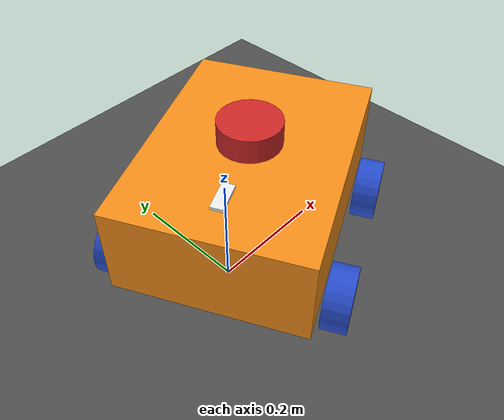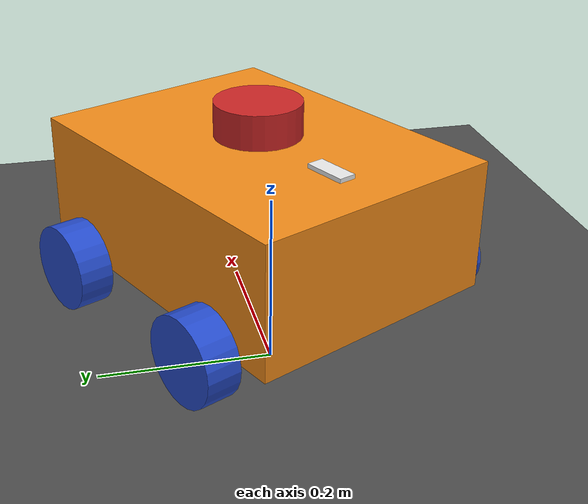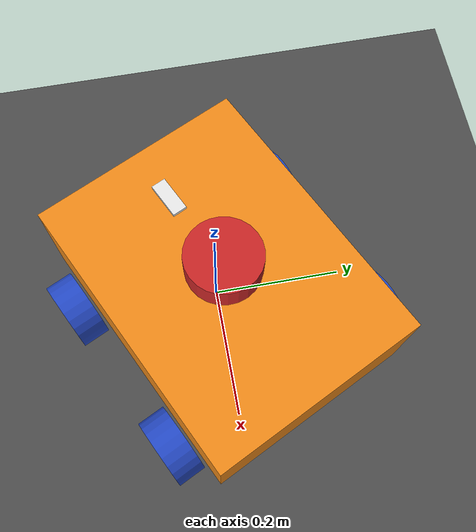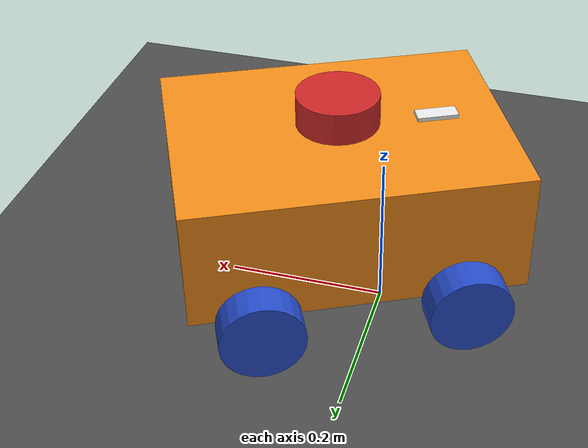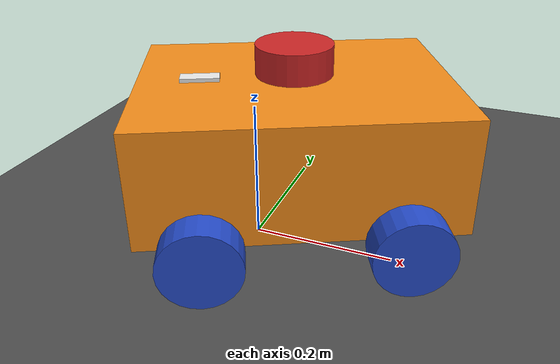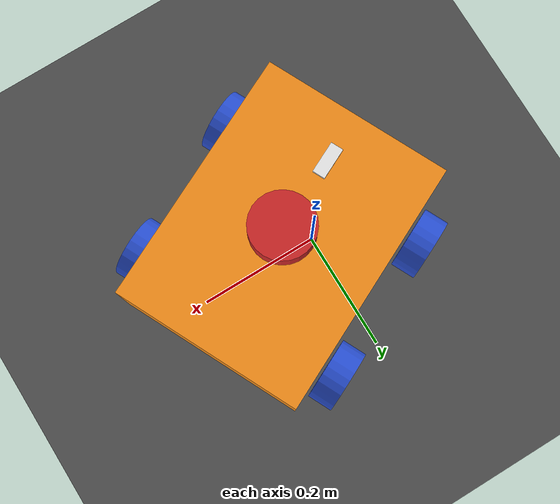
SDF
<sdf version="1.7">
 <world name="default">
  <model name="ground_plane">
   <static>1</static>
   <link name="link">
    <collision name="collision">
     <geometry><plane><normal>0 0 1</normal><size>100 100</size></plane></geometry>
     <surface><friction><ode><mu>100</mu><mu2>50</mu2></ode></friction></surface>
    </collision>
    <visual name="visual">
     <cast_shadows>0</cast_shadows>
     <geometry><plane><normal>0 0 1</normal><size>100 100</size></plane></geometry>
     <material>
      <script><uri>file://media/materials/scripts/gazebo.material</uri><name>Gazebo/Grey</name></script>
     </material>
    </visual>
   </link>
  </model>
  <model name="asphalt_plane">
   <static>1</static>
   <link name="link">
    <collision name="collision"><geometry><box><size>20 20 0.1</size></box></geometry></collision>
    <visual name="visual">
     <cast_shadows>0</cast_shadows>
     <geometry><box><size>20 20 0.1</size></box></geometry>
     <material>
      <script>
       <uri>model://asphalt_plane/materials/scripts</uri>
       <uri>model://asphalt_plane/materials/textures</uri>
       <name>vrc/asphalt</name>
      </script>
     </material>
    </visual>
   </link>
   <pose>0.001928 -0.179786 0 0 -0 0</pose>
  </model>
  <model name="my_bot">
   <link name="base_link">
    <inertial>
     <pose>0.110769 0 0.096154 0 -0 0</pose>
     <mass>0.65</mass>
     <inertia>
      <ixx>0.0057558</ixx>
      <ixy>0</ixy>
      <ixz>0.000323077</ixz>
      <iyy>0.00934583</iyy>
      <iyz>0</iyz>
      <izz>0.0112184</izz>
     </inertia>
    </inertial>
    <collision name="base_link_fixed_joint_lump__chassis_collision">
     <pose>0.12 0 0.075 0 -0 0</pose>
     <geometry><box><size>0.4 0.3 0.15</size></box></geometry>
    </collision>
    <collision name="base_link_fixed_joint_lump__laser_frame_collision_1">
     <pose>0.12 0 0.175 0 -0 0</pose>
     <geometry><cylinder><length>0.04</length><radius>0.05</radius></cylinder></geometry>
    </collision>
    <collision name="base_link_fixed_joint_lump__imu_link_collision_2">
     <pose>0 0 0.15 0 -0 0</pose>
     <geometry><box><size>0.01 0.02 0.05</size></box></geometry>
    </collision>
    <visual name="base_link_fixed_joint_lump__chassis_visual">
     <pose>0.12 0 0.075 0 -0 0</pose>
     <geometry><box><size>0.4 0.3 0.15</size></box></geometry>
     <material>
      <script><name>Gazebo/Orange</name><uri>file://media/materials/scripts/gazebo.material</uri></script>
     </material>
    </visual>
    <visual name="base_link_fixed_joint_lump__laser_frame_visual_1">
     <pose>0.12 0 0.175 0 -0 0</pose>
     <geometry><cylinder><length>0.04</length><radius>0.05</radius></cylinder></geometry>
     <material>
      <script><name>Gazebo/Red</name><uri>file://media/materials/scripts/gazebo.material</uri></script>
     </material>
    </visual>
    <visual name="base_link_fixed_joint_lump__imu_link_visual_2">
     <pose>0 0 0.15 0 -0 0</pose>
     <geometry><box><size>0.05 0.02 0.01</size></box></geometry>
     <material>
      <script><name>Gazebo/White</name><uri>file://media/materials/scripts/gazebo.material</uri></script>
     </material>
    </visual>
    <sensor name="laser" type="ray">
     <visualize>0</visualize>
     <update_rate>10</update_rate>
     <ray>
      <scan>
       <horizontal>
        <samples>360</samples>
        <min_angle>-3.14</min_angle>
        <max_angle>3.14</max_angle>
        <resolution>1</resolution>
       </horizontal>
       <vertical><samples>1</samples><min_angle>0</min_angle><max_angle>0</max_angle></vertical>
      </scan>
      <range><min>0.3</min><max>12</max></range>
      <noise><type>gaussian</type><mean>0</mean><stddev>0.01</stddev></noise>
     </ray>
     <plugin name="laser_controller" filename="libgazebo_ros_ray_sensor.so">
      <ros><argument>--ros-args --remap ~/out:=scan</argument></ros>
      <output_type>sensor_msgs/LaserScan</output_type>
      <frame_name>laser_frame</frame_name>
     </plugin>
     <pose>0.12 0 0.175 0 -0 0</pose>
    </sensor>
    <sensor name="imu" type="imu">
     <always_on>1</always_on>
     <update_rate>100</update_rate>
     <imu>
      <angular_velocity>
       <x><noise type="gaussian"><mean>0</mean><stddev>0.0002</stddev></noise></x>
       <y><noise type="gaussian"><mean>0</mean><stddev>0.0002</stddev></noise></y>
       <z><noise type="gaussian"><mean>0</mean><stddev>0.0002</stddev></noise></z>
      </angular_velocity>
      <linear_acceleration>
       <x><noise type="gaussian"><mean>0</mean><stddev>0.017</stddev></noise></x>
       <y><noise type="gaussian"><mean>0</mean><stddev>0.017</stddev></noise></y>
       <z><noise type="gaussian"><mean>0</mean><stddev>0.017</stddev></noise></z>
      </linear_acceleration>
     </imu>
     <plugin name="imu" filename="libgazebo_ros_imu_sensor.so">
      <xyzOffset>0 0 0</xyzOffset>
      <rpyOffset>0 0 0</rpyOffset>
     </plugin>
     <pose>0 0 0.15 0 -0 0</pose>
    </sensor>
   </link>
   <joint name="left_back_wheel_hinge" type="revolute">
    <pose relative_to="base_link">0 0.175 0 -1.5708 0 0</pose>
    <parent>base_link</parent>
    <child>left_back_wheel</child>
    <axis>
     <xyz>0 0 1</xyz>
     <limit><lower>-1e+16</lower><upper>1e+16</upper></limit>
     <dynamics><spring_reference>0</spring_reference><spring_stiffness>0</spring_stiffness></dynamics>
    </axis>
   </joint>
   <link name="left_back_wheel">
    <pose relative_to="left_back_wheel_hinge">0 0 0 0 -0 0</pose>
    <inertial>
     <mass>0.1</mass>
     <inertia>
      <ixx>7.58333e-05</ixx>
      <ixy>0</ixy>
      <ixz>0</ixz>
      <iyy>7.58333e-05</iyy>
      <iyz>0</iyz>
      <izz>0.000125</izz>
     </inertia>
    </inertial>
    <collision name="left_back_wheel_collision">
     <geometry><sphere><radius>0.05</radius></sphere></geometry>
     <surface><friction><ode><mu>0.05</mu><mu2>0.05</mu2></ode></friction></surface>
    </collision>
    <visual name="left_back_wheel_visual">
     <geometry><cylinder><length>0.04</length><radius>0.05</radius></cylinder></geometry>
     <material>
      <script><name>Gazebo/Blue</name><uri>file://media/materials/scripts/gazebo.material</uri></script>
     </material>
    </visual>
   </link>
   <joint name="left_front_wheel_hinge" type="revolute">
    <pose relative_to="base_link">0.24 0.175 0 -1.5708 0 0</pose>
    <parent>base_link</parent>
    <child>left_front_wheel</child>
    <axis>
     <xyz>0 0 1</xyz>
     <limit><lower>-1e+16</lower><upper>1e+16</upper></limit>
     <dynamics><spring_reference>0</spring_reference><spring_stiffness>0</spring_stiffness></dynamics>
    </axis>
   </joint>
   <link name="left_front_wheel">
    <pose relative_to="left_front_wheel_hinge">0 0 0 0 -0 0</pose>
    <inertial>
     <mass>0.1</mass>
     <inertia>
      <ixx>7.58333e-05</ixx>
      <ixy>0</ixy>
      <ixz>0</ixz>
      <iyy>7.58333e-05</iyy>
      <iyz>0</iyz>
      <izz>0.000125</izz>
     </inertia>
    </inertial>
    <collision name="left_front_wheel_collision">
     <geometry><sphere><radius>0.05</radius></sphere></geometry>
     <surface><friction><ode><mu>0.05</mu><mu2>0.05</mu2></ode></friction></surface>
    </collision>
    <visual name="left_front_wheel_visual">
     <geometry><cylinder><length>0.04</length><radius>0.05</radius></cylinder></geometry>
     <material>
      <script><name>Gazebo/Blue</name><uri>file://media/materials/scripts/gazebo.material</uri></script>
     </material>
    </visual>
   </link>
   <joint name="right_back_wheel_hinge" type="revolute">
    <pose relative_to="base_link">0 -0.175 0 1.5708 -0 0</pose>
    <parent>base_link</parent>
    <child>right_back_wheel</child>
    <axis>
     <xyz>0 0 -1</xyz>
     <limit><lower>-1e+16</lower><upper>1e+16</upper></limit>
     <dynamics><spring_reference>0</spring_reference><spring_stiffness>0</spring_stiffness></dynamics>
    </axis>
   </joint>
   <link name="right_back_wheel">
    <pose relative_to="right_back_wheel_hinge">0 0 0 0 -0 0</pose>
    <inertial>
     <mass>0.1</mass>
     <inertia>
      <ixx>7.58333e-05</ixx>
      <ixy>0</ixy>
      <ixz>0</ixz>
      <iyy>7.58333e-05</iyy>
      <iyz>0</iyz>
      <izz>0.000125</izz>
     </inertia>
    </inertial>
    <collision name="right_back_wheel_collision">
     <geometry><sphere><radius>0.05</radius></sphere></geometry>
     <surface><friction><ode><mu>0.05</mu><mu2>0.05</mu2></ode></friction></surface>
    </collision>
    <visual name="right_back_wheel_visual">
     <geometry><cylinder><length>0.04</length><radius>0.05</radius></cylinder></geometry>
     <material>
      <script><name>Gazebo/Blue</name><uri>file://media/materials/scripts/gazebo.material</uri></script>
     </material>
    </visual>
   </link>
   <joint name="right_front_wheel_hinge" type="revolute">
    <pose relative_to="base_link">0.24 -0.175 0 1.5708 -0 0</pose>
    <parent>base_link</parent>
    <child>right_front_wheel</child>
    <axis>
     <xyz>0 0 -1</xyz>
     <limit><lower>-1e+16</lower><upper>1e+16</upper></limit>
     <dynamics><spring_reference>0</spring_reference><spring_stiffness>0</spring_stiffness></dynamics>
    </axis>
   </joint>
   <link name="right_front_wheel">
    <pose relative_to="right_front_wheel_hinge">0 0 0 0 -0 0</pose>
    <inertial>
     <mass>0.1</mass>
     <inertia>
      <ixx>7.58333e-05</ixx>
      <ixy>0</ixy>
      <ixz>0</ixz>
      <iyy>7.58333e-05</iyy>
      <iyz>0</iyz>
      <izz>0.000125</izz>
     </inertia>
    </inertial>
    <collision name="right_front_wheel_collision">
     <geometry><sphere><radius>0.05</radius></sphere></geometry>
     <surface><friction><ode><mu>0.05</mu><mu2>0.05</mu2></ode></friction></surface>
    </collision>
    <visual name="right_front_wheel_visual">
     <geometry><cylinder><length>0.04</length><radius>0.05</radius></cylinder></geometry>
     <material>
      <script><name>Gazebo/Blue</name><uri>file://media/materials/scripts/gazebo.material</uri></script>
     </material>
    </visual>
   </link>
   <static>0</static>
   <plugin name="gazebo_ros2_control" filename="libgazebo_ros2_control.so">
    <robot_param>robot_description</robot_param>
    <robot_param_node>robot_state_publisher</robot_param_node>
    <parameters>/home/asimkumar/asitlor_ws/install/asitlorbot_five_controller/share/asitlorbot_five_controller/config/asitlorbot_five_controller.yaml</parameters>
   </plugin>
   <pose>-0.051461 -0.050378 0.1 0 -0 0.451047</pose>
  </model>
 </world>
</sdf>
